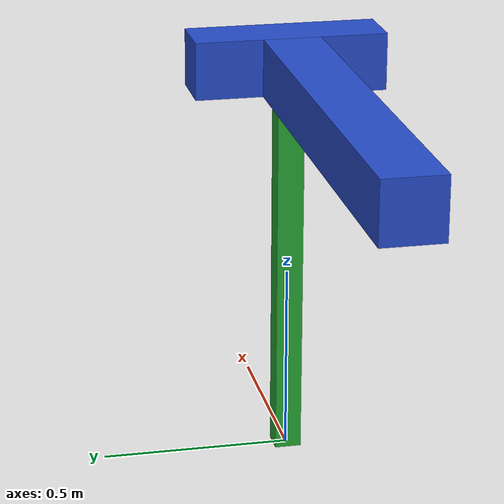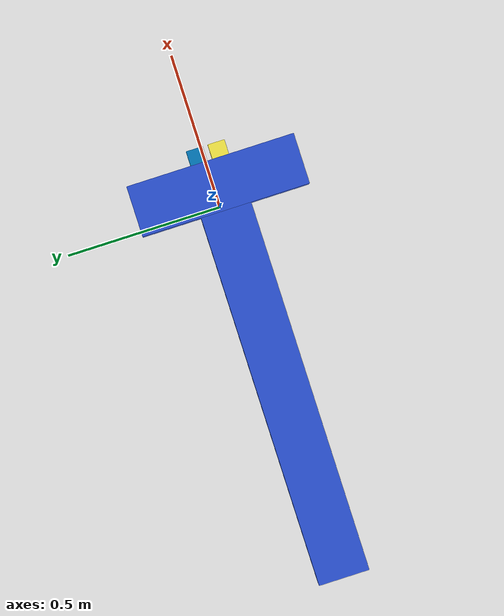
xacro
<?xml version='1.0'?>
<robot xmlns:xacro="http://www.ros.org/wiki/xacro" name="stereo">
    <xacro:include filename="dimensions.xacro"/>
    <xacro:include filename="macros.xacro"/>

    <!-- World -->
    <link name="world"></link>

    <!-- BODY -->

    <link name="body">
        <collision>
            <geometry>
                <box size="${body_dim}"/>
            </geometry>
        </collision>

        <visual>
            <geometry>
                <box size="${body_dim}"/>
            </geometry>
        </visual>

        <xacro:inertial_box mass="0.25" x="${body_x}" y="${body_y}" z="${body_z}">
            <origin xyz="0 0 0" rpy="0 0 0"/>
        </xacro:inertial_box>
    </link>

    <joint name="body_fix" type="fixed">
        <origin xyz="0 0 ${body_z/2}"/>
        <parent link="world"/>
        <child link="body"/>
    </joint>

    <!-- ARM -->

    <link name="arm">
        <collision name="arm_collision">
            <origin xyz="${-arm_length/2} 0 0"/>
            <geometry>
                <box size="${arm_coll_dim}"/>
            </geometry>
        </collision>

        <visual name="arm_len">
            <origin xyz="${(arm_thickness-arm_length)/2-body_x} 0 0"/>
            <geometry>
                <box size="${arm_vis1_dim}"/>
            </geometry>
        </visual>
        <visual name="arm_span">
            <origin xyz="${-body_x + arm_thickness/2} 0 0"/>
            <geometry>
                <box size="${arm_vis2_dim}"/>
            </geometry>
        </visual>

        <xacro:inertial_box mass="0.4" x="${arm_length}" y="${arm_span}" z="${arm_thickness}">
            <origin xyz="0 0 0"/>
        </xacro:inertial_box>
    </link>

    <joint name="body_arm" type="prismatic">
        <origin xyz="${body_x/2} 0 ${(body_z+arm_thickness)/2}"/>
        <parent link="body"/>
        <child link="arm"/>
        <axis xyz="1 0 0"/>
        <limit lower="0" upper="${arm_length-body_x}" effort="100" velocity="100"/>
    </joint>

    <xacro:include filename="gazebo.xacro"/>

    <!-- Camera R -->

    <link name="camera_r_link">
        <visual>
            <origin xyz="${cam_size/2} 0 0"/>
            <geometry>
                <box size="${cam_size} ${cam_size} ${cam_size}"/>
            </geometry>
        </visual>
    </link>

    <joint name="camera_r_fix" type="fixed">
        <origin xyz = "${arm_thickness/2} -${ipd/2} 0"/>
        <parent link = "arm"/>
        <child link = "camera_r_link"/>
    </joint>

    <!-- Camera L -->

    <link name="camera_l_link">
        <visual>
            <origin xyz="${cam_size/2} 0 0"/>
            <geometry>
                <box size="${cam_size} ${cam_size} ${cam_size}"/>
            </geometry>
        </visual>
    </link>

    <joint name="camera_l_fix" type="fixed">
        <origin xyz = "${arm_thickness/2} ${ipd/2} 0"/>
        <parent link = "arm"/>
        <child link = "camera_l_link"/>
    </joint>

    <!-- Camera Midpoint (PCL Reference) -->
    <link name="camera_midpoint"></link>

    <joint name="camera_midpoint_fix" type="fixed">
        <origin xyz = "${arm_thickness/2} 0 0"/>
        <parent link = "arm"/>
        <child link = "camera_midpoint"/>
    </joint>

</robot>

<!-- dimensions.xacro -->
<robot xmlns:xacro="http://www.ros.org/wiki/xacro">

    <!-- Body -->
    <xacro:property name="body_x" value="0.07"/>
    <xacro:property name="body_y" value="${body_x}"/>
    <xacro:property name="body_z" value="1"/>
    <xacro:property name="body_dim" value="${body_x} ${body_y} ${body_z}"/>

    <!-- Arm -->
    <xacro:property name="arm_thickness" value="0.15"/>
    <xacro:property name="arm_span" value="0.5"/>
    <xacro:property name="arm_length" value="1.25"/>
    <xacro:property name="arm_coll_dim" value="${arm_length} ${arm_span} ${arm_thickness}"/>
    <xacro:property name="arm_vis1_dim" value="${arm_length-arm_thickness} ${arm_thickness} ${arm_thickness}"/>
    <xacro:property name="arm_vis2_dim" value="${arm_thickness} ${arm_span} ${arm_thickness}"/>

    <!-- Cameras -->
    <xacro:property name="ipd" value="0.065"/>
    <xacro:property name="cam_size" value="0.05"/>

</robot>

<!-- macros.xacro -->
<robot xmlns:xacro="http://www.ros.org/wiki/xacro">

    <!-- Inertial -->
    <xacro:macro name="inertial_sphere" params="mass radius *origin">
        <inertial>
            <xacro:insert_block name="origin"/>
            <mass value="${mass}" />
            <inertia ixx="${(2/5) * mass * (radius*radius)}" ixy="0.0" ixz="0.0"
                    iyy="${(2/5) * mass * (radius*radius)}" iyz="0.0"
                    izz="${(2/5) * mass * (radius*radius)}" />
        </inertial>
    </xacro:macro>

    <xacro:macro name="inertial_box" params="mass x y z *origin">
        <inertial>
            <xacro:insert_block name="origin"/>
            <mass value="${mass}" />
            <inertia ixx="${(1/12) * mass * (y*y+z*z)}" ixy="0.0" ixz="0.0"
                    iyy="${(1/12) * mass * (x*x+z*z)}" iyz="0.0"
                    izz="${(1/12) * mass * (x*x+y*y)}" />
        </inertial>
    </xacro:macro>

    <xacro:macro name="inertial_cylinder" params="mass length radius *origin">
        <inertial>
            <xacro:insert_block name="origin"/>
            <mass value="${mass}" />
            <inertia ixx="${(1/12) * mass * (3*radius*radius + length*length)}" ixy="0.0" ixz="0.0"
                    iyy="${(1/12) * mass * (3*radius*radius + length*length)}" iyz="0.0"
                    izz="${(1/2) * mass * (radius*radius)}" />
        </inertial>
    </xacro:macro>

</robot>
